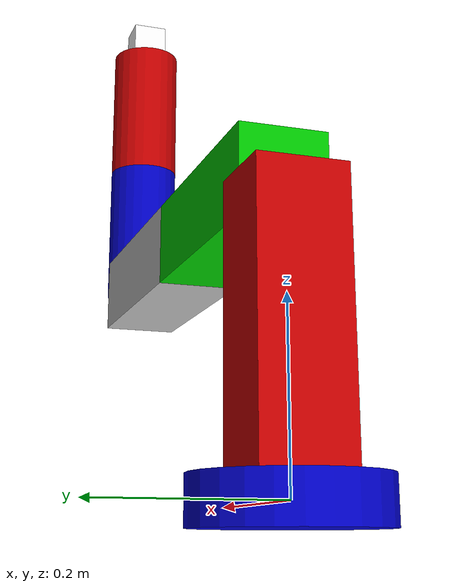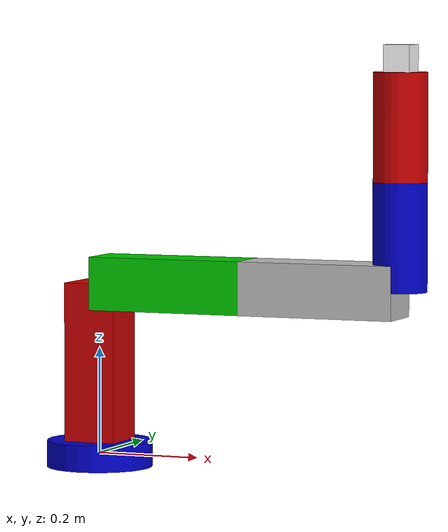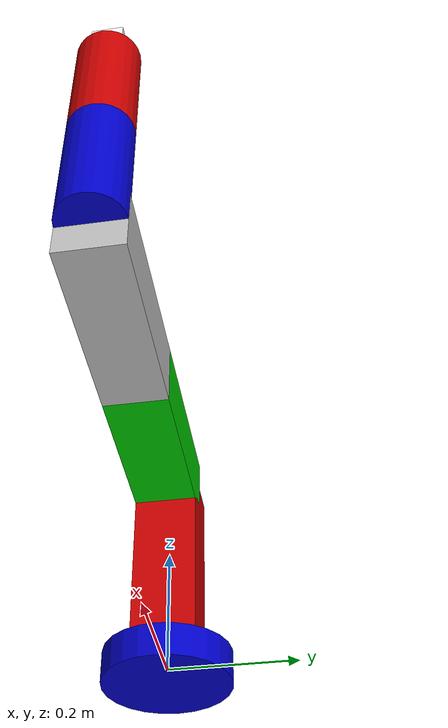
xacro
<?xml version="1.0"?>
<robot xmlns:xacro="http://www.ros.org/wiki/xacro" name="six_dof_arm">

    <!-- Materials -->
    <material name="blue">
        <color rgba="0 0 0.8 1"/>
    </material>
    <material name="red">
        <color rgba="0.8 0 0 1"/>
    </material>
    <material name="green">
        <color rgba="0 0.8 0 1"/>
    </material>
    <material name="grey">
        <color rgba="0.75 0.75 0.75 1"/>
    </material>
    <material name="white">
        <color rgba="1 1 1 1"/>
    </material>

    <!-- Base Link -->
    <link name="base_link">
        <visual>
            <origin xyz="0 0 0" rpy="0 0 0"/>
            <geometry>
                <cylinder radius="0.1" length="0.05"/>
            </geometry>
            <material name="blue"/>
        </visual>
        <collision>
            <origin xyz="0 0 0" rpy="0 0 0"/>
            <geometry>
                <cylinder radius="0.1" length="0.05"/>
            </geometry>
        </collision>
        <inertial>
            <mass value="1.0"/>
            <inertia ixx="0.0027" ixy="0" ixz="0" iyy="0.0027" iyz="0" izz="0.005"/>
        </inertial>
    </link>

    <!-- Joint 1: Base to Link 1 (Shoulder Pan) -->
    <joint name="joint1" type="revolute">
        <parent link="base_link"/>
        <child link="link1"/>
        <origin xyz="0 0 0.025" rpy="0 0 0"/>
        <axis xyz="0 0 1"/>
        <limit lower="-3.14" upper="3.14" effort="100" velocity="1"/>
    </joint>

    <!-- Link 1 -->
    <link name="link1">
        <visual>
            <origin xyz="0 0 0.15" rpy="0 0 0"/>
            <geometry>
                <box size="0.1 0.1 0.3"/>
            </geometry>
            <material name="red"/>
        </visual>
        <collision>
            <origin xyz="0 0 0.15" rpy="0 0 0"/>
            <geometry>
                <box size="0.1 0.1 0.3"/>
            </geometry>
        </collision>
        <inertial>
            <mass value="1.0"/>
            <inertia ixx="0.0075" ixy="0" ixz="0" iyy="0.0075" iyz="0" izz="0.0017"/>
        </inertial>
    </link>

    <!-- Joint 2: Link 1 to Link 2 (Shoulder Lift) -->
    <joint name="joint2" type="revolute">
        <parent link="link1"/>
        <child link="link2"/>
        <origin xyz="0 0 0.3" rpy="0 0 0"/>
        <axis xyz="0 1 0"/>
        <limit lower="-1.57" upper="1.57" effort="100" velocity="1"/>
    </joint>

    <!-- Link 2 -->
    <link name="link2">
        <visual>
            <origin xyz="0.15 0 0" rpy="0 0 0"/>
            <geometry>
                <box size="0.3 0.1 0.1"/>
            </geometry>
            <material name="green"/>
        </visual>
        <collision>
            <origin xyz="0.15 0 0" rpy="0 0 0"/>
            <geometry>
                <box size="0.3 0.1 0.1"/>
            </geometry>
        </collision>
        <inertial>
            <mass value="1.0"/>
            <inertia ixx="0.0017" ixy="0" ixz="0" iyy="0.0075" iyz="0" izz="0.0075"/>
        </inertial>
    </link>

    <!-- Joint 3: Link 2 to Link 3 (Elbow) -->
    <joint name="joint3" type="revolute">
        <parent link="link2"/>
        <child link="link3"/>
        <origin xyz="0.3 0 0" rpy="0 0 0"/>
        <axis xyz="0 1 0"/>
        <limit lower="-1.57" upper="1.57" effort="100" velocity="1"/>
    </joint>

    <!-- Link 3 -->
    <link name="link3">
        <visual>
            <origin xyz="0.15 0 0" rpy="0 0 0"/>
            <geometry>
                <box size="0.3 0.1 0.1"/>
            </geometry>
            <material name="grey"/>
        </visual>
        <collision>
            <origin xyz="0.15 0 0" rpy="0 0 0"/>
            <geometry>
                <box size="0.3 0.1 0.1"/>
            </geometry>
        </collision>
        <inertial>
            <mass value="1.0"/>
            <inertia ixx="0.0017" ixy="0" ixz="0" iyy="0.0075" iyz="0" izz="0.0075"/>
        </inertial>
    </link>

    <!-- Joint 4: Link 3 to Link 4 (Wrist 1) -->
    <joint name="joint4" type="revolute">
        <parent link="link3"/>
        <child link="link4"/>
        <origin xyz="0.3 0 0" rpy="0 0 0"/>
        <axis xyz="1 0 0"/>
        <limit lower="-3.14" upper="3.14" effort="100" velocity="1"/>
    </joint>

    <!-- Link 4 -->
    <link name="link4">
        <visual>
            <origin xyz="0 0 0.1" rpy="0 0 0"/>
            <geometry>
                <cylinder radius="0.05" length="0.2"/>
            </geometry>
            <material name="blue"/>
        </visual>
        <collision>
            <origin xyz="0 0 0.1" rpy="0 0 0"/>
            <geometry>
                <cylinder radius="0.05" length="0.2"/>
            </geometry>
        </collision>
        <inertial>
            <mass value="0.5"/>
            <inertia ixx="0.0017" ixy="0" ixz="0" iyy="0.0017" iyz="0" izz="0.0013"/>
        </inertial>
    </link>

    <!-- Joint 5: Link 4 to Link 5 (Wrist 2) -->
    <joint name="joint5" type="revolute">
        <parent link="link4"/>
        <child link="link5"/>
        <origin xyz="0 0 0.2" rpy="0 0 0"/>
        <axis xyz="0 1 0"/>
        <limit lower="-1.57" upper="1.57" effort="100" velocity="1"/>
    </joint>

    <!-- Link 5 -->
    <link name="link5">
        <visual>
            <origin xyz="0 0 0.1" rpy="0 0 0"/>
            <geometry>
                <cylinder radius="0.05" length="0.2"/>
            </geometry>
            <material name="red"/>
        </visual>
        <collision>
            <origin xyz="0 0 0.1" rpy="0 0 0"/>
            <geometry>
                <cylinder radius="0.05" length="0.2"/>
            </geometry>
        </collision>
        <inertial>
            <mass value="0.5"/>
            <inertia ixx="0.0017" ixy="0" ixz="0" iyy="0.0017" iyz="0" izz="0.0013"/>
        </inertial>
    </link>

    <!-- Joint 6: Link 5 to End Effector (Wrist 3) -->
    <joint name="joint6" type="revolute">
        <parent link="link5"/>
        <child link="end_effector"/>
        <origin xyz="0 0 0.2" rpy="0 0 0"/>
        <axis xyz="1 0 0"/>
        <limit lower="-3.14" upper="3.14" effort="100" velocity="1"/>
    </joint>

    <!-- End Effector Link -->
    <link name="end_effector">
        <visual>
            <origin xyz="0 0 0.025" rpy="0 0 0"/>
            <geometry>
                <box size="0.05 0.05 0.05"/>
            </geometry>
            <material name="white"/>
        </visual>
        <collision>
            <origin xyz="0 0 0.025" rpy="0 0 0"/>
            <geometry>
                <box size="0.05 0.05 0.05"/>
            </geometry>
        </collision>
        <inertial>
            <mass value="0.1"/>
            <inertia ixx="0.0001" ixy="0" ixz="0" iyy="0.0001" iyz="0" izz="0.0001"/>
        </inertial>
    </link>

</robot>
